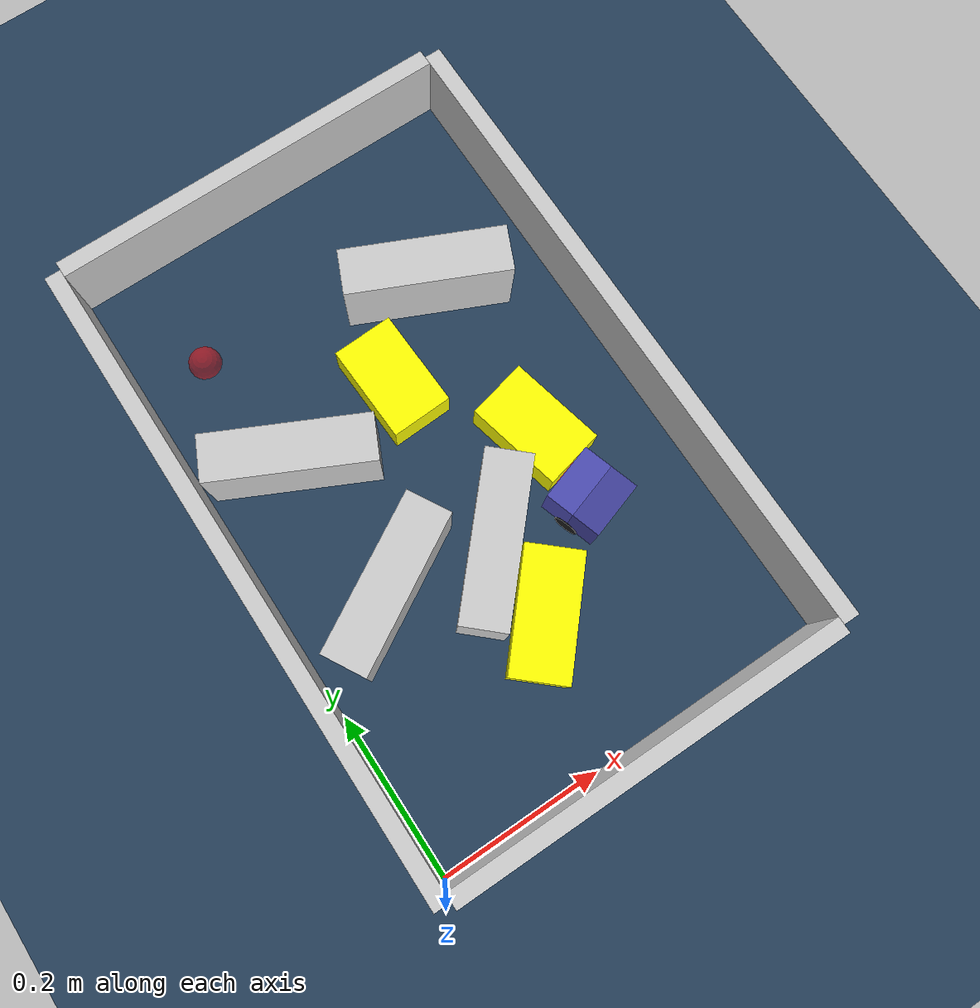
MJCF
<?xml version='1.0' encoding='utf-8'?>
<mujoco model="real_buildable">
  <compiler angle="degree" />
  <option timestep="0.002" integrator="implicitfast" iterations="100" cone="elliptic" />
  <default>
    <geom density="1" />
  </default>
  <asset>
    <texture builtin="gradient" height="3072" rgb1="0.3 0.5 0.7" rgb2="0 0 0" type="skybox" width="512" />
    <texture builtin="checker" height="300" mark="edge" markrgb="0.8 0.8 0.8" name="groundplane" rgb1="0.2 0.3 0.4" rgb2="0.1 0.2 0.3" type="2d" width="300" />
    <material name="groundplane" reflectance="0.2" texrepeat="5 5" texture="groundplane" texuniform="true" />
  </asset>
  <worldbody>
    <light dir="0 0 -1" directional="true" pos="0 0 1.5" />
    <geom name="floor" type="plane" condim="4" friction="0.5 0.005 0.001" material="groundplane" size="0 0 0.05" />
    <body name="walls">
      <geom name="wall_boundary_left" type="box" condim="4" friction="1.0 0.005 0.0001" rgba="0.8 0.8 0.8 1" pos="-0.010000 0.387500 0.050000" euler="0 0 0.000000" size="0.010000 0.397500 0.050000" />
      <geom name="wall_boundary_right" type="box" condim="4" friction="1.0 0.005 0.0001" rgba="0.8 0.8 0.8 1" pos="0.500000 0.387500 0.050000" euler="0 0 0.000000" size="0.010000 0.397500 0.050000" />
      <geom name="wall_boundary_bottom" type="box" condim="4" friction="1.0 0.005 0.0001" rgba="0.8 0.8 0.8 1" pos="0.245000 -0.010000 0.050000" euler="0 0 0.000000" size="0.245000 0.010000 0.050000" />
      <geom name="wall_boundary_top" type="box" condim="4" friction="1.0 0.005 0.0001" rgba="0.8 0.8 0.8 1" pos="0.245000 0.785000 0.050000" euler="0 0 0.000000" size="0.245000 0.010000 0.050000" />
      <geom name="wall_inner_1" type="box" condim="4" friction="1.0 0.005 0.0001" rgba="0.8 0.8 0.8 1" pos="0.117101 0.288295 0.050000" euler="0 0 209.588602" size="0.097500 0.027500 0.050000" />
      <geom name="wall_inner_2" type="box" condim="4" friction="1.0 0.005 0.0001" rgba="0.8 0.8 0.8 1" pos="0.239713 0.263436 0.050000" euler="0 0 227.711311" size="0.097500 0.027500 0.050000" />
      <geom name="wall_inner_3" type="box" condim="4" friction="1.0 0.005 0.0001" rgba="0.8 0.8 0.8 1" pos="0.106000 0.470000 0.050000" euler="0 0 154.200000" size="0.097500 0.027500 0.050000" />
      <geom name="wall_inner_4" type="box" condim="4" friction="1.0 0.005 0.0001" rgba="0.8 0.8 0.8 1" pos="0.350000 0.570000 0.050000" euler="0 0 155.700000" size="0.097500 0.027500 0.050000" />
    </body>
    <body name="car" pos="0.35777993231358163 0.25159736578485314 0.01" quat="0.58933500130339023 0 0 0.80788876476822791">
      <freejoint name="car_freejoint" />
      <inertial pos="0 0 0.0375" mass="0.35" diaginertia="0.000266 0.000266 0.000286" />
      <geom name="front_chassis_collision" type="box" pos="0.0175 0 0.0375" size="0.0175 0.035 0.0325" rgba="0.3 0.3 0.7 1" />
      <geom name="rear_chassis_collision" type="box" pos="-0.0175 0 0.0375" size="0.0175 0.035 0.0325" rgba="0.25 0.25 0.6 1" />
      <geom name="front_marker" type="box" pos="0.034 0 0.0505" size="0.002 0.015 0.01" rgba="1 0.2 0.2 1" contype="0" conaffinity="0" />
      <body name="rear_support_body" pos="-0.03 0 0.0025">
        <joint name="rear_caster_joint" type="ball" damping="0.0001" />
        <inertial pos="0 0 0" mass="0.025" diaginertia="0.000001 0.000001 0.000001" />
        <geom name="rear_support" type="sphere" pos="0 0 0" size="0.0025" friction="0 0 0" rgba="0.7 0.1 0.1 1" />
      </body>
      <body name="front_support_body" pos="0.03 0 0.0025">
        <joint name="front_caster_joint" type="ball" damping="0.0001" />
        <inertial pos="0 0 0" mass="0.025" diaginertia="0.000001 0.000001 0.000001" />
        <geom name="front_support" type="sphere" pos="0 0 0" size="0.0025" friction="0 0 0" rgba="0.1 0.7 0.1 1" />
      </body>
      <body name="left_wheel" pos="0 0.0375 0.015">
        <inertial pos="0 0 0" mass="0.05" diaginertia="0.000003 0.000006 0.000003" />
        <joint name="left_wheel_joint" type="hinge" axis="0 1 0" damping="0.01" armature="0.0001" />
        <geom name="left_wheel_collision" type="cylinder" size="0.015 0.0005" euler="90 0 0" rgba="0.1 0.1 0.1 1" />
      </body>
      <body name="right_wheel" pos="0 -0.0375 0.015">
        <inertial pos="0 0 0" mass="0.05" diaginertia="0.000003 0.000006 0.000003" />
        <joint name="right_wheel_joint" type="hinge" axis="0 1 0" damping="0.01" armature="0.0001" />
        <geom name="right_wheel_collision" type="cylinder" size="0.015 0.0005" euler="90 0 0" rgba="0.1 0.1 0.1 1" />
      </body>
    </body>
    <body name="obstacle_0_movable">
      <geom name="obstacle_0_movable" condim="4" pos="0.35632516155620775 0.35307005785305878 0.025000000000000001" friction="1 0.005 0.0001" rgba="1 1 0 1" size="0.037500 0.060000 0.025000" type="box" mass="0.1" quat="0.99347041442134909 0 0 0.1140900331732487" />
      <joint type="free" />
    </body>
    <body name="obstacle_1_movable">
      <geom name="obstacle_1_movable" condim="4" pos="0.25099999999999978 0.48999999999999932 0.025000000000000001" friction="1 0.005 0.0001" rgba="1 1 0 1" size="0.037500 0.060000 0.025000" type="box" mass="0.1" quat="0.99976202707990913 0 0 0.02181488503456112" />
      <joint type="free" />
    </body>
    <body name="obstacle_2_movable">
      <geom name="obstacle_2_movable" condim="4" pos="0.24739344222004167 0.17022297837049205 0.02" friction="1 0.005 0.0001" rgba="1 1 0 1" size="0.035000 0.075000 0.020000" type="box" mass="0.1" quat="0.35422023660807217 0 0 0.93516203086808514" />
      <joint type="free" />
    </body>
    <site name="goal" type="sphere" pos="0.080000 0.640000 0.0" size="0.02" rgba="1 0 0 0.5" />
  </worldbody>
  <actuator>
    <velocity name="left_wheel_drive" joint="left_wheel_joint" ctrlrange="-25 25" kv="0.75" forcerange="-0.5 0.5" />
    <velocity name="right_wheel_drive" joint="right_wheel_joint" ctrlrange="-25 25" kv="0.75" forcerange="-0.5 0.5" />
  </actuator>
</mujoco>
